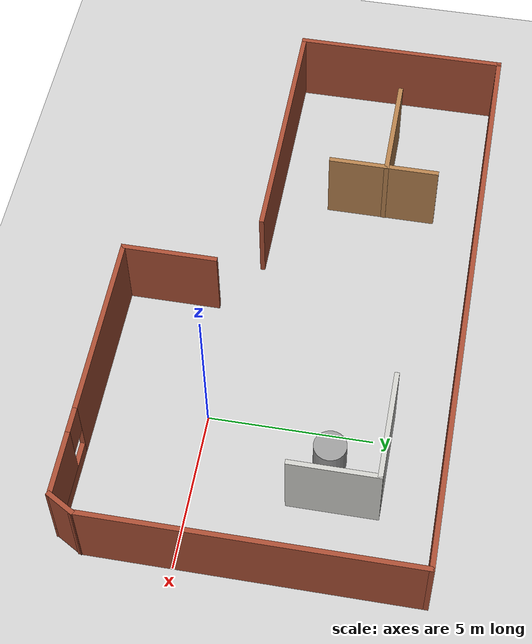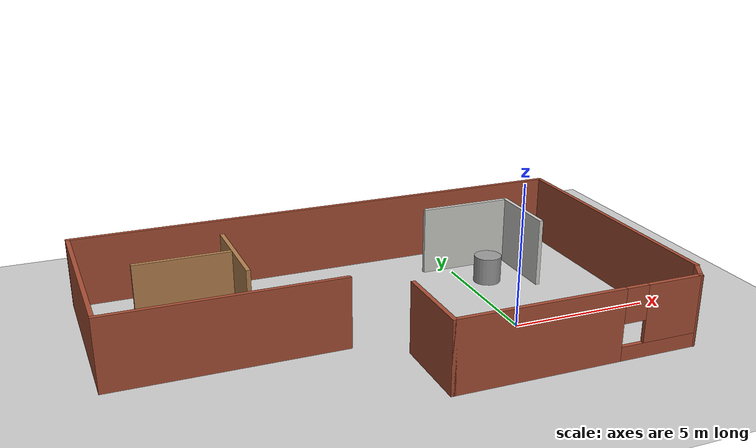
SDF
<sdf version="1.7">
 <world name="default">
  <light name="sun" type="directional">
   <pose>0 0 10 0 -0 0</pose>
   <diffuse>0.8 0.8 0.8 1</diffuse>
   <specular>0.2 0.2 0.2 1</specular>
   <attenuation>
    <range>1000</range>
    <constant>0.9</constant>
    <linear>0.01</linear>
    <quadratic>0.001</quadratic>
   </attenuation>
   <direction>-0.5 0.1 -0.9</direction>
   <spot><inner_angle>0</inner_angle><outer_angle>0</outer_angle><falloff>0</falloff></spot>
  </light>
  <model name="ground_plane">
   <static>1</static>
   <link name="link">
    <collision name="collision">
     <geometry><plane><normal>0 0 1</normal><size>100 100</size></plane></geometry>
     <surface>
      <contact><collide_bitmask>65535</collide_bitmask></contact>
      <friction><ode><mu>100</mu><mu2>50</mu2></ode></friction>
     </surface>
    </collision>
    <visual name="visual">
     <cast_shadows>0</cast_shadows>
     <geometry><plane><normal>0 0 1</normal><size>100 100</size></plane></geometry>
     <material>
      <script><uri>file://media/materials/scripts/gazebo.material</uri><name>Gazebo/Grey</name></script>
     </material>
    </visual>
   </link>
  </model>
  <gravity>0 0 -9.8</gravity>
  <magnetic_field>6e-06 2.3e-05 -4.2e-05</magnetic_field>
  <atmosphere type="adiabatic"/>
  <physics type="ode">
   <max_step_size>0.001</max_step_size>
   <real_time_factor>1</real_time_factor>
   <real_time_update_rate>1000</real_time_update_rate>
  </physics>
  <scene><ambient>0.4 0.4 0.4 1</ambient><background>0.7 0.7 0.7 1</background><shadows>1</shadows></scene>
  <spherical_coordinates>
   <surface_model>EARTH_WGS84</surface_model>
   <latitude_deg>0</latitude_deg>
   <longitude_deg>0</longitude_deg>
   <elevation>0</elevation>
   <heading_deg>0</heading_deg>
  </spherical_coordinates>
  <model name="Untitled">
   <pose>-4.33127 1.88933 0 0 -0 0</pose>
   <link name="Wall_0">
    <collision name="Wall_0_Collision">
     <geometry><box><size>3 0.15 2.5</size></box></geometry>
     <pose>0 0 1.25 0 -0 0</pose>
    </collision>
    <visual name="Wall_0_Visual">
     <pose>0 0 1.25 0 -0 0</pose>
     <geometry><box><size>3 0.15 2.5</size></box></geometry>
     <material>
      <script><uri>file://media/materials/scripts/gazebo.material</uri><name>Gazebo/Bricks</name></script>
      <ambient>1 1 1 1</ambient>
     </material>
     <meta><layer>0</layer></meta>
    </visual>
    <pose>0.261275 -3.85433 0 0 -0 -1.5708</pose>
   </link>
   <link name="Wall_1">
    <pose>4.56128 -5.27933 0 0 -0 0</pose>
    <visual name="Wall_1_Visual_0">
     <pose>-1.42228 0 1.25 0 -0 0</pose>
     <geometry><box><size>5.90544 0.15 2.5</size></box></geometry>
     <material>
      <script><uri>file://media/materials/scripts/gazebo.material</uri><name>Gazebo/Bricks</name></script>
      <ambient>1 1 1 1</ambient>
     </material>
     <meta><layer>0</layer></meta>
    </visual>
    <collision name="Wall_1_Collision_0">
     <geometry><box><size>5.90544 0.15 2.5</size></box></geometry>
     <pose>-1.42228 0 1.25 0 -0 0</pose>
    </collision>
    <visual name="Wall_1_Visual_1">
     <pose>2.95272 0 0.25 0 -0 0</pose>
     <geometry><box><size>2.84456 0.15 0.5</size></box></geometry>
     <material>
      <script><uri>file://media/materials/scripts/gazebo.material</uri><name>Gazebo/Bricks</name></script>
      <ambient>1 1 1 1</ambient>
     </material>
     <meta><layer>0</layer></meta>
    </visual>
    <collision name="Wall_1_Collision_1">
     <geometry><box><size>2.84456 0.15 0.5</size></box></geometry>
     <pose>2.95272 0 0.25 0 -0 0</pose>
    </collision>
    <visual name="Wall_1_Visual_2">
     <pose>3.35272 0 1.5 0 -0 0</pose>
     <geometry><box><size>2.04456 0.15 2</size></box></geometry>
     <material>
      <script><uri>file://media/materials/scripts/gazebo.material</uri><name>Gazebo/Bricks</name></script>
      <ambient>1 1 1 1</ambient>
     </material>
     <meta><layer>0</layer></meta>
    </visual>
    <collision name="Wall_1_Collision_2">
     <geometry><box><size>2.04456 0.15 2</size></box></geometry>
     <pose>3.35272 0 1.5 0 -0 0</pose>
    </collision>
    <visual name="Wall_1_Visual_3">
     <pose>1.93044 0 1.9 0 -0 0</pose>
     <geometry><box><size>0.8 0.15 1.2</size></box></geometry>
     <material>
      <script><uri>file://media/materials/scripts/gazebo.material</uri><name>Gazebo/Bricks</name></script>
      <ambient>1 1 1 1</ambient>
     </material>
     <meta><layer>0</layer></meta>
    </visual>
    <collision name="Wall_1_Collision_3">
     <geometry><box><size>0.8 0.15 1.2</size></box></geometry>
     <pose>1.93044 0 1.9 0 -0 0</pose>
    </collision>
   </link>
   <link name="Wall_11">
    <collision name="Wall_11_Collision">
     <geometry><box><size>3.5 0.15 2.5</size></box></geometry>
     <pose>0 0 1.25 0 -0 0</pose>
    </collision>
    <visual name="Wall_11_Visual">
     <pose>0 0 1.25 0 -0 0</pose>
     <geometry><box><size>3.5 0.15 2.5</size></box></geometry>
     <material>
      <script><uri>file://media/materials/scripts/gazebo.material</uri><name>Gazebo/Wood</name></script>
      <ambient>1 1 1 1</ambient>
     </material>
     <meta><layer>0</layer></meta>
    </visual>
    <pose>-4.2553 2.12841 0 0 -0 -1.5708</pose>
   </link>
   <link name="Wall_18">
    <collision name="Wall_18_Collision">
     <geometry><box><size>3.5 0.15 2.5</size></box></geometry>
     <pose>0 0 1.25 0 -0 0</pose>
    </collision>
    <visual name="Wall_18_Visual">
     <pose>0 0 1.25 0 -0 0</pose>
     <geometry><box><size>3.5 0.15 2.5</size></box></geometry>
     <material>
      <script><uri>file://media/materials/scripts/gazebo.material</uri><name>Gazebo/Wood</name></script>
      <ambient>1 1 1 1</ambient>
     </material>
     <meta><layer>0</layer></meta>
    </visual>
    <pose>-5.91923 2.21661 0 0 -0 0</pose>
   </link>
   <link name="Wall_2">
    <collision name="Wall_2_Collision">
     <geometry><box><size>1 0.15 2.5</size></box></geometry>
     <pose>0 0 1.25 0 -0 0</pose>
    </collision>
    <visual name="Wall_2_Visual">
     <pose>0 0 1.25 0 -0 0</pose>
     <geometry><box><size>1 0.15 2.5</size></box></geometry>
     <material>
      <script><uri>file://media/materials/scripts/gazebo.material</uri><name>Gazebo/Bricks</name></script>
      <ambient>1 1 1 1</ambient>
     </material>
     <meta><layer>0</layer></meta>
    </visual>
    <pose>9.07377 -4.91127 0 0 -0 1.0472</pose>
   </link>
   <link name="Wall_3">
    <collision name="Wall_3_Collision">
     <geometry><box><size>10 0.15 2.5</size></box></geometry>
     <pose>0 0 1.25 0 -0 0</pose>
    </collision>
    <visual name="Wall_3_Visual">
     <pose>0 0 1.25 0 -0 0</pose>
     <geometry><box><size>10 0.15 2.5</size></box></geometry>
     <material>
      <script><uri>file://media/materials/scripts/gazebo.material</uri><name>Gazebo/Bricks</name></script>
      <ambient>0.760784 0.662745 0.627451 1</ambient>
     </material>
     <meta><layer>0</layer></meta>
    </visual>
    <pose>9.28627 0.381786 0 0 -0 1.5708</pose>
   </link>
   <link name="Wall_4">
    <collision name="Wall_4_Collision">
     <geometry><box><size>18.75 0.15 2.5</size></box></geometry>
     <pose>0 0 1.25 0 -0 0</pose>
    </collision>
    <visual name="Wall_4_Visual">
     <pose>0 0 1.25 0 -0 0</pose>
     <geometry><box><size>18.75 0.15 2.5</size></box></geometry>
     <material>
      <script><uri>file://media/materials/scripts/gazebo.material</uri><name>Gazebo/Bricks</name></script>
      <ambient>1 1 1 1</ambient>
     </material>
     <meta><layer>0</layer></meta>
    </visual>
    <pose>-0.013725 5.30679 0 0 -0 3.14159</pose>
   </link>
   <link name="Wall_5">
    <collision name="Wall_5_Collision">
     <geometry><box><size>6.75 0.15 2.5</size></box></geometry>
     <pose>0 0 1.25 0 -0 0</pose>
    </collision>
    <visual name="Wall_5_Visual">
     <pose>0 0 1.25 0 -0 0</pose>
     <geometry><box><size>6.75 0.15 2.5</size></box></geometry>
     <material>
      <script><uri>file://media/materials/scripts/gazebo.material</uri><name>Gazebo/Bricks</name></script>
      <ambient>1 1 1 1</ambient>
     </material>
     <meta><layer>0</layer></meta>
    </visual>
    <pose>-9.31373 2.00679 0 0 -0 -1.5708</pose>
   </link>
   <link name="Wall_6">
    <collision name="Wall_6_Collision">
     <geometry><box><size>8 0.15 2.5</size></box></geometry>
     <pose>0 0 1.25 0 -0 0</pose>
    </collision>
    <visual name="Wall_6_Visual">
     <pose>0 0 1.25 0 -0 0</pose>
     <geometry><box><size>8 0.15 2.5</size></box></geometry>
     <material>
      <script><uri>file://media/materials/scripts/gazebo.material</uri><name>Gazebo/Bricks</name></script>
      <ambient>1 1 1 1</ambient>
     </material>
     <meta><layer>0</layer></meta>
    </visual>
    <pose>-5.38873 -1.29321 0 0 -0 0</pose>
   </link>
   <link name="Wall_8">
    <collision name="Wall_8_Collision">
     <geometry><box><size>3.5 0.15 2.5</size></box></geometry>
     <pose>0 0 1.25 0 -0 0</pose>
    </collision>
    <visual name="Wall_8_Visual">
     <pose>0 0 1.25 0 -0 0</pose>
     <geometry><box><size>3.5 0.15 2.5</size></box></geometry>
     <material>
      <script><uri>file://media/materials/scripts/gazebo.material</uri><name>Gazebo/CeilingTiled</name></script>
      <ambient>1 1 1 1</ambient>
     </material>
     <meta><layer>0</layer></meta>
    </visual>
    <pose>5.09614 3.57079 0 0 -0 0</pose>
   </link>
   <link name="Wall_9">
    <collision name="Wall_9_Collision">
     <geometry><box><size>2.75 0.15 2.5</size></box></geometry>
     <pose>0 0 1.25 0 -0 0</pose>
    </collision>
    <visual name="Wall_9_Visual">
     <pose>0 0 1.25 0 -0 0</pose>
     <geometry><box><size>2.75 0.15 2.5</size></box></geometry>
     <material>
      <script><uri>file://media/materials/scripts/gazebo.material</uri><name>Gazebo/CeilingTiled</name></script>
      <ambient>1 1 1 1</ambient>
     </material>
     <meta><layer>0</layer></meta>
    </visual>
    <pose>6.77114 2.2708 0 0 -0 -1.5708</pose>
   </link>
   <static>1</static>
  </model>
  <model name="unit_cylinder">
   <pose>0.886259 3.83497 0.5 0 -0 0</pose>
   <link name="link">
    <inertial>
     <mass>1</mass>
     <inertia><ixx>0.145833</ixx><ixy>0</ixy><ixz>0</ixz><iyy>0.145833</iyy><iyz>0</iyz><izz>0.125</izz></inertia>
    </inertial>
    <collision name="collision">
     <geometry><cylinder><radius>0.5</radius><length>1</length></cylinder></geometry>
    </collision>
    <visual name="visual">
     <geometry><cylinder><radius>0.5</radius><length>1</length></cylinder></geometry>
     <material>
      <script><name>Gazebo/Grey</name><uri>file://media/materials/scripts/gazebo.material</uri></script>
     </material>
    </visual>
   </link>
  </model>
 </world>
</sdf>
